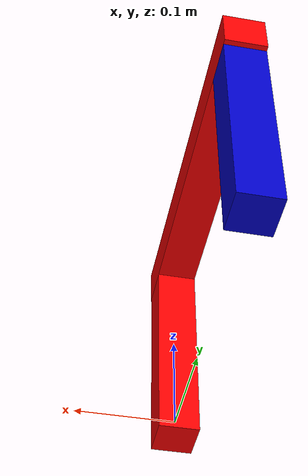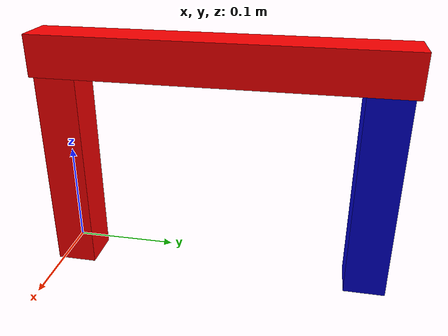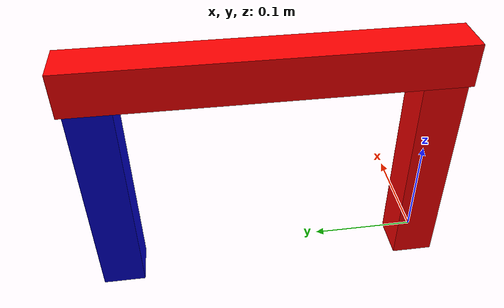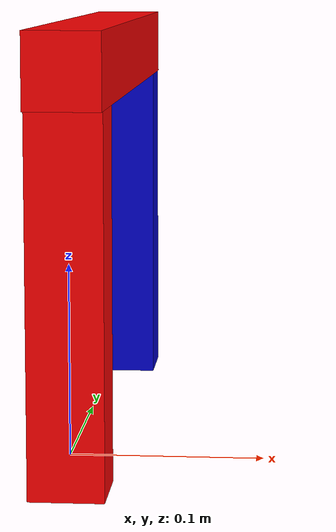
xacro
<?xml version="1.0"?>

<robot xmlns:xacro="http://www.ros.org/wiki/xacro" name="frame_stand">

  <material name="blue">
    <color rgba="0 0 0.8 1"/>
  </material>
  <material name="red">
    <color rgba="1 0 0 1"/>
  </material>
  <material name="white">
    <color rgba="1 1 1 1"/>
  </material>

  <link name="pillar_left">
    <visual>
      <geometry>
        <box size="0.04 0.04 0.2"/>
      </geometry>
      <origin rpy="0 0 0" xyz="0 0.3 0.08"/>
       <material name="blue"/>
    </visual>
  </link>

  <link name="pillar_right">
    <visual>
      <geometry>
        <box size="0.04 0.04 0.2"/>
      </geometry>
      <origin rpy="0 0 0" xyz="0 0 0"/>
       <material name="red"/>
    </visual>
  </link>

  <link name="pillar_top">
    <visual>
      <geometry>
        <box size="0.04 0.35 0.04"/>
      </geometry>
      <origin rpy="0 0 0" xyz="0 0.15 0.16"/>
       <material name="red"/>
    </visual>
  </link>

  <joint name="pillar_left_to_pillar_top" type="fixed">
    <parent link="pillar_left"/>
    <child link="pillar_top"/>
    <origin xyz="0 0 0.04"/>
  </joint>

  <joint name="pillar_top_to_pillar_right" type="fixed">
    <parent link="pillar_top"/>
    <child link="pillar_right"/>
    <origin xyz="0 0 0.04"/>
  </joint>

</robot>
